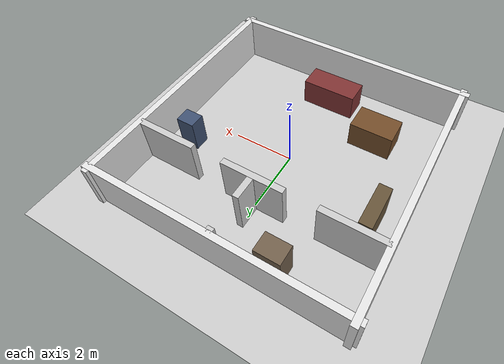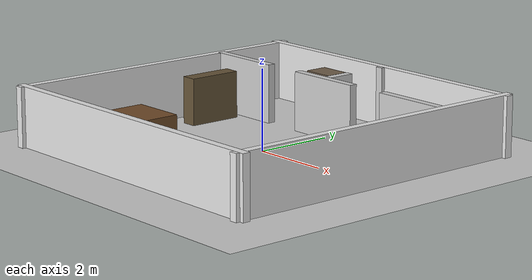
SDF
<?xml version="1.0"?>
<sdf version="1.6">
  <world name="small_house">

    <include>
      <uri>model://sun</uri>
    </include>

    <include>
      <uri>model://ground_plane</uri>
    </include>

    <scene>
      <ambient>0.4 0.4 0.4 1</ambient>
      <background>0.7 0.7 0.7 1</background>
      <shadows>true</shadows>
    </scene>

    <!-- gazebo_ros_state: provides /set_entity_state and /get_entity_state
         so the static A2 model can be teleported by cmd_vel_driver -->
    <plugin name="gazebo_ros_state" filename="libgazebo_ros_state.so">
      <ros>
        <namespace>/</namespace>
      </ros>
      <update_rate>1000.0</update_rate>
    </plugin>

    <!-- ==================== Outer walls: 8 m x 8 m, 0.2 m thick, 1.5 m high ==================== -->
    <model name="wall_outer_north">
      <static>true</static>
      <pose>0 4 0.75 0 0 0</pose>
      <link name="link">
        <collision name="collision">
          <geometry><box><size>8.4 0.2 1.5</size></box></geometry>
        </collision>
        <visual name="visual">
          <geometry><box><size>8.4 0.2 1.5</size></box></geometry>
          <material>
            <ambient>0.8 0.8 0.8 1</ambient>
            <diffuse>0.9 0.9 0.9 1</diffuse>
          </material>
        </visual>
      </link>
    </model>

    <model name="wall_outer_south">
      <static>true</static>
      <pose>0 -4 0.75 0 0 0</pose>
      <link name="link">
        <collision name="collision">
          <geometry><box><size>8.4 0.2 1.5</size></box></geometry>
        </collision>
        <visual name="visual">
          <geometry><box><size>8.4 0.2 1.5</size></box></geometry>
          <material>
            <ambient>0.8 0.8 0.8 1</ambient>
            <diffuse>0.9 0.9 0.9 1</diffuse>
          </material>
        </visual>
      </link>
    </model>

    <model name="wall_outer_west">
      <static>true</static>
      <pose>-4 0 0.75 0 0 0</pose>
      <link name="link">
        <collision name="collision">
          <geometry><box><size>0.2 8.4 1.5</size></box></geometry>
        </collision>
        <visual name="visual">
          <geometry><box><size>0.2 8.4 1.5</size></box></geometry>
          <material>
            <ambient>0.8 0.8 0.8 1</ambient>
            <diffuse>0.9 0.9 0.9 1</diffuse>
          </material>
        </visual>
      </link>
    </model>

    <model name="wall_outer_east">
      <static>true</static>
      <pose>4 0 0.75 0 0 0</pose>
      <link name="link">
        <collision name="collision">
          <geometry><box><size>0.2 8.4 1.5</size></box></geometry>
        </collision>
        <visual name="visual">
          <geometry><box><size>0.2 8.4 1.5</size></box></geometry>
          <material>
            <ambient>0.8 0.8 0.8 1</ambient>
            <diffuse>0.9 0.9 0.9 1</diffuse>
          </material>
        </visual>
      </link>
    </model>

    <!-- ============ Internal wall separating living room (y < 2) from two bedrooms ============ -->
    <!-- Door opening 1: x in [-2, -1], Door opening 2: x in [1, 2] -->

    <model name="wall_inner_h_a">
      <static>true</static>
      <pose>-3 2 0.75 0 0 0</pose>
      <link name="link">
        <collision name="collision">
          <geometry><box><size>2.0 0.2 1.5</size></box></geometry>
        </collision>
        <visual name="visual">
          <geometry><box><size>2.0 0.2 1.5</size></box></geometry>
          <material>
            <ambient>0.7 0.7 0.7 1</ambient>
            <diffuse>0.8 0.8 0.8 1</diffuse>
          </material>
        </visual>
      </link>
    </model>

    <model name="wall_inner_h_b">
      <static>true</static>
      <pose>0 2 0.75 0 0 0</pose>
      <link name="link">
        <collision name="collision">
          <geometry><box><size>2.0 0.2 1.5</size></box></geometry>
        </collision>
        <visual name="visual">
          <geometry><box><size>2.0 0.2 1.5</size></box></geometry>
          <material>
            <ambient>0.7 0.7 0.7 1</ambient>
            <diffuse>0.8 0.8 0.8 1</diffuse>
          </material>
        </visual>
      </link>
    </model>

    <model name="wall_inner_h_c">
      <static>true</static>
      <pose>3 2 0.75 0 0 0</pose>
      <link name="link">
        <collision name="collision">
          <geometry><box><size>2.0 0.2 1.5</size></box></geometry>
        </collision>
        <visual name="visual">
          <geometry><box><size>2.0 0.2 1.5</size></box></geometry>
          <material>
            <ambient>0.7 0.7 0.7 1</ambient>
            <diffuse>0.8 0.8 0.8 1</diffuse>
          </material>
        </visual>
      </link>
    </model>

    <!-- Vertical wall between the two bedrooms (x = 0, y > 2), door opening y in [2.8, 3.8] -->
    <model name="wall_inner_v_a">
      <static>true</static>
      <pose>0 2.45 0.75 0 0 0</pose>
      <link name="link">
        <collision name="collision">
          <geometry><box><size>0.2 0.7 1.5</size></box></geometry>
        </collision>
        <visual name="visual">
          <geometry><box><size>0.2 0.7 1.5</size></box></geometry>
          <material>
            <ambient>0.7 0.7 0.7 1</ambient>
            <diffuse>0.8 0.8 0.8 1</diffuse>
          </material>
        </visual>
      </link>
    </model>

    <model name="wall_inner_v_b">
      <static>true</static>
      <pose>0 3.9 0.75 0 0 0</pose>
      <link name="link">
        <collision name="collision">
          <geometry><box><size>0.2 0.2 1.5</size></box></geometry>
        </collision>
        <visual name="visual">
          <geometry><box><size>0.2 0.2 1.5</size></box></geometry>
          <material>
            <ambient>0.7 0.7 0.7 1</ambient>
            <diffuse>0.8 0.8 0.8 1</diffuse>
          </material>
        </visual>
      </link>
    </model>

    <!-- ==================== Furniture (static boxes) ==================== -->
    <model name="furniture_table">
      <static>true</static>
      <pose>-2.0 -2.0 0.45 0 0 0</pose>
      <link name="link">
        <collision name="collision">
          <geometry><box><size>1.4 0.9 0.9</size></box></geometry>
        </collision>
        <visual name="visual">
          <geometry><box><size>1.4 0.9 0.9</size></box></geometry>
          <material>
            <ambient>0.35 0.22 0.12 1</ambient>
            <diffuse>0.45 0.30 0.16 1</diffuse>
          </material>
        </visual>
      </link>
    </model>

    <model name="furniture_sofa">
      <static>true</static>
      <pose>0.0 -3.0 0.45 0 0 0</pose>
      <link name="link">
        <collision name="collision">
          <geometry><box><size>1.8 0.8 0.9</size></box></geometry>
        </collision>
        <visual name="visual">
          <geometry><box><size>1.8 0.8 0.9</size></box></geometry>
          <material>
            <ambient>0.35 0.15 0.15 1</ambient>
            <diffuse>0.5 0.2 0.2 1</diffuse>
          </material>
        </visual>
      </link>
    </model>

    <model name="furniture_cabinet">
      <static>true</static>
      <pose>3.1 0.9 0.55 0 0 0</pose>
      <link name="link">
        <collision name="collision">
          <geometry><box><size>0.6 0.5 1.1</size></box></geometry>
        </collision>
        <visual name="visual">
          <geometry><box><size>0.6 0.5 1.1</size></box></geometry>
          <material>
            <ambient>0.2 0.25 0.35 1</ambient>
            <diffuse>0.25 0.32 0.45 1</diffuse>
          </material>
        </visual>
      </link>
    </model>

    <model name="furniture_bookshelf">
      <static>true</static>
      <pose>-3.2 1.0 0.6 0 0 0</pose>
      <link name="link">
        <collision name="collision">
          <geometry><box><size>0.4 1.4 1.2</size></box></geometry>
        </collision>
        <visual name="visual">
          <geometry><box><size>0.4 1.4 1.2</size></box></geometry>
          <material>
            <ambient>0.3 0.25 0.18 1</ambient>
            <diffuse>0.4 0.33 0.22 1</diffuse>
          </material>
        </visual>
      </link>
    </model>

    <model name="furniture_wardrobe">
      <static>true</static>
      <pose>-1.5 3.4 0.6 0 0 0</pose>
      <link name="link">
        <collision name="collision">
          <geometry><box><size>0.8 0.6 1.2</size></box></geometry>
        </collision>
        <visual name="visual">
          <geometry><box><size>0.8 0.6 1.2</size></box></geometry>
          <material>
            <ambient>0.35 0.3 0.25 1</ambient>
            <diffuse>0.45 0.38 0.3 1</diffuse>
          </material>
        </visual>
      </link>
    </model>

  </world>
</sdf>
